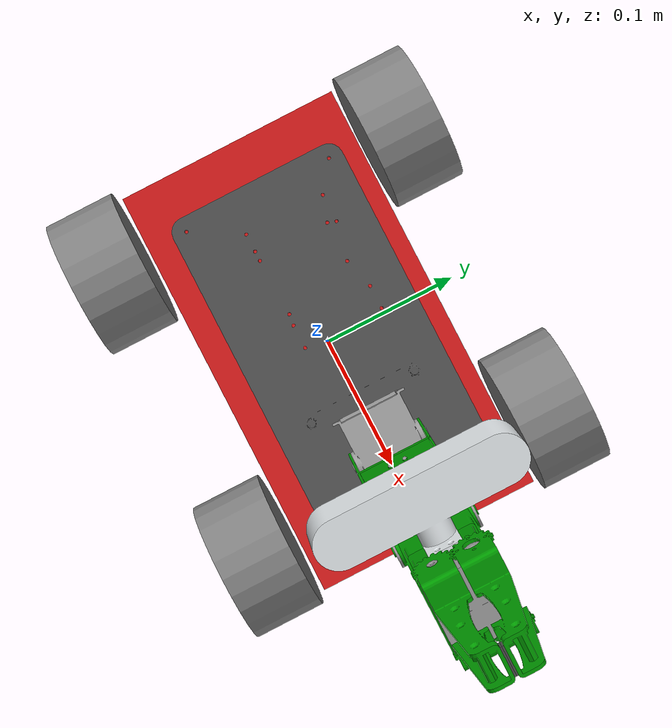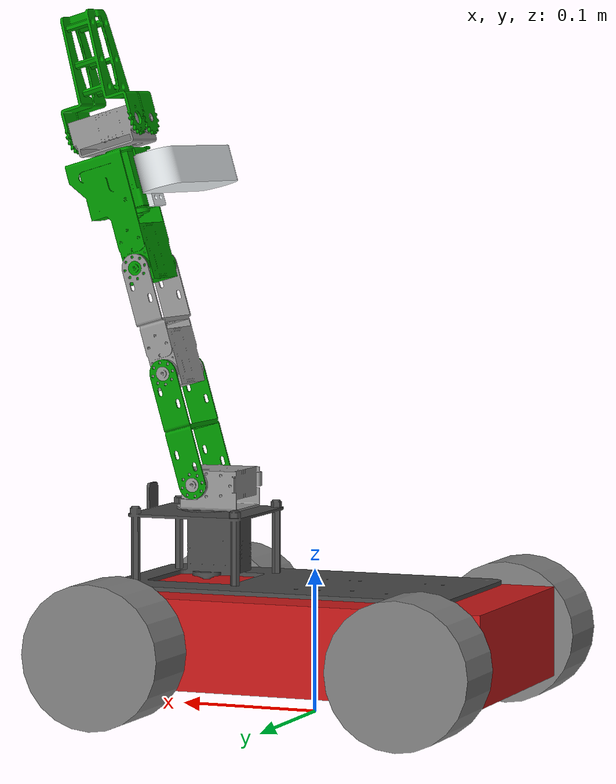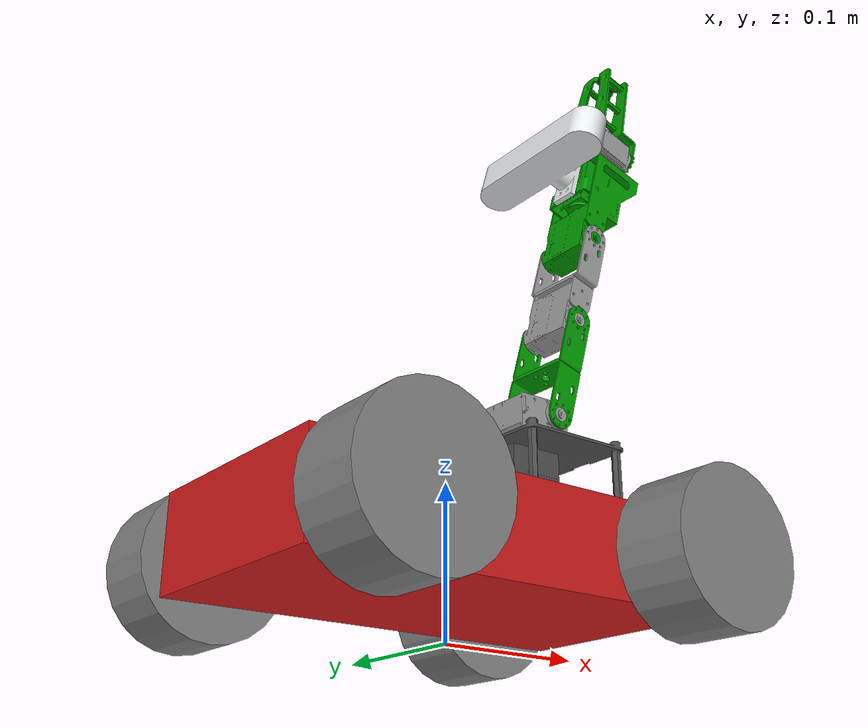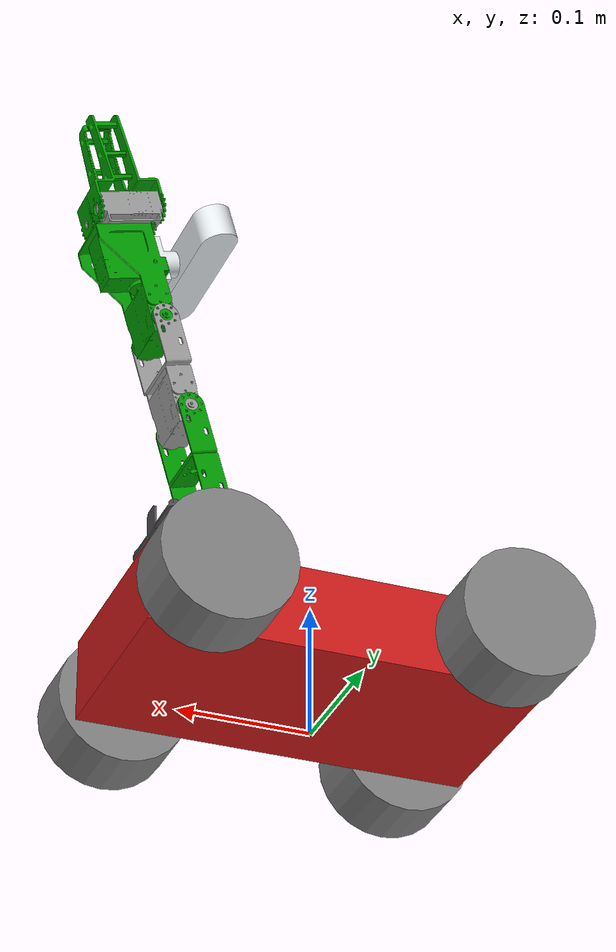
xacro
<?xml version="1.0"?>
<robot name="combined_robot" xmlns:xacro="http://www.ros.org/wiki/xacro">

  <!-- Include chassis -->
  <xacro:include filename="$(find robot_control)/combined_urdf/ackermann.urdf.xacro"/>

  <!-- Include robot arm -->
  <xacro:include filename="$(find robot_control)/combined_urdf/arm5dof.urdf"/>

  <!-- Mount arm to chassis -->
  <joint name="arm_mount_joint" type="fixed">
    <parent link="base_link"/>
    <child link="arm_base_link"/>
    <origin xyz="0.081 0.003 0.088" rpy="0 0 0"/>
  </joint>

</robot>

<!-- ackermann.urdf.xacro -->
<robot xmlns:xacro="http://ros.org/wiki/xacro" name="ackermann_chassis">

  <!-- ====== Geometry (edit as needed) ====== -->
  <xacro:property name="wheelbase"          value="0.22"/>     <!-- centre axis of front left wheel to centre axis of rear left wheel in meters (same parameter for rigth side) -->
  <xacro:property name="front_track"        value="0.2225"/> <!-- centre of front wheel to centre of right front wheel in meters -->
  <xacro:property name="rear_track"         value="0.2225"/> <!-- centre of rear wheel to centre of right rear wheel in meters -->
  <xacro:property name="front_wheel_radius" value="0.05"/>  <!-- radius of a wheel -->
  <xacro:property name="rear_wheel_radius"  value="0.05"/>  <!-- radius of a wheel -->

<!-- chassis parameters for RViz or Gazebo -->
  <xacro:property name="chassis_height"     value="0.063"/>     <!-- total height of chassis from ground to top in m -->
  <xacro:property name="clearance"          value="0.022"/>     <!-- total clearance chassis has from ground to beginning of chassis -->
  <xacro:property name="z_base"             value="0.0535"/>    <!-- clearance + chassis_height/2 -->

  <!-- Switch: fake hardware vs real Arduino bridge -->
  <xacro:arg name="use_fake_hardware" default="true"/>
  <xacro:arg name="serial_port"  default="/dev/ttyACM0"/>
  <xacro:arg name="serial_baud"  default="115200"/>

  <!-- ====== Wheel macro (visual + collision) ====== -->
  <xacro:macro name="wheel_link" params="name r">
  <link name="${name}">
    <inertial>
      <origin xyz="0 0 0"/>
      <mass value="0.5"/>
      <inertia ixx="0.001" iyy="0.001" izz="0.001" ixy="0" ixz="0" iyz="0"/>
    </inertial>

    <!-- Rotate cylinder so its axis (Z) becomes Y: roll = +90° -->
    <visual>
      <origin xyz="0 0 0" rpy="1.5708 0 0"/>  <!-- << correct -->
      <geometry><cylinder radius="${r}" length="0.05"/></geometry>
      <material name="grey"><color rgba="0.5 0.5 0.5 1.0"/></material>
    </visual>

    <collision>
      <origin xyz="0 0 0" rpy="1.5708 0 0"/>  <!-- << same -->
      <geometry><cylinder radius="${r}" length="0.05"/></geometry>
    </collision>
  </link>
</xacro:macro>

  <!-- ====== Base (chassis) ====== -->
  <link name="base_link">
    <inertial>
      <origin xyz="0 0 ${z_base}"/>
      <mass value="8.0"/>
      <inertia ixx="0.1" iyy="0.1" izz="0.1" ixy="0" ixz="0" iyz="0"/>
    </inertial>
    <visual>
      <origin xyz="0 0 ${z_base}"/>
      <geometry><box size="0.297 0.159 0.063"/></geometry>
      <material name="red"><color rgba="0.8 0.1 0.1 1.0"/></material>
    </visual>
    <collision>
      <origin xyz="0 0 ${z_base}" rpy="0 0 0"/>
      <geometry><box size="0.297 0.159 0.063"/></geometry>
    </collision>
  </link>

  <!-- ====== Wheel links ====== -->
  <xacro:wheel_link name="front_left_wheel"  r="${front_wheel_radius}"/>
  <xacro:wheel_link name="front_right_wheel" r="${front_wheel_radius}"/>
  <xacro:wheel_link name="rear_left_wheel"   r="${rear_wheel_radius}"/>
  <xacro:wheel_link name="rear_right_wheel"  r="${rear_wheel_radius}"/>

  <!-- ====== Realsense Camera link ====== -->

  <!-- Optional optical frames (recommended) -->

  <!-- ====== Joints (x forward, y left, z up) ====== -->
  <!-- Both joints are still shown in RViz to accurately represent the chassis, however, one is a mimic to depict the tricycle setup -->
  <!-- Front steering (revolute about Z at wheel height) -->
  <joint name="front_left_steer_joint" type="revolute">
    <parent link="base_link"/>
    <child  link="front_left_wheel"/>
    <origin xyz="${wheelbase/2}  ${front_track/2}  ${front_wheel_radius}" rpy="0 0 0"/>
    <axis xyz="0 0 1"/>
    <!-- safe ±48° from HTS-20H (300–700 units) -->
    <limit lower="-0.838" upper="0.838" effort="5" velocity="1.5"/>
  </joint>

  <joint name="front_right_steer_joint" type="revolute">
    <mimic joint="front_left_steer_joint" multiplier="1.0" offset="0.0"/> <!-- This is added so the chassis acts as a single steering actuator with a mirrored visual steering -->
    <parent link="base_link"/>
    <child  link="front_right_wheel"/>
    <origin xyz="${wheelbase/2} -${front_track/2}  ${front_wheel_radius}" rpy="0 0 0"/>
    <axis xyz="0 0 1"/>
    <limit lower="-0.838" upper="0.838" effort="5" velocity="1.5"/>
  </joint>

  <!-- Rear drive (continuous spin about Y at wheel height) -->
  <joint name="rear_left_wheel_joint" type="continuous">
    <parent link="base_link"/>
    <child  link="rear_left_wheel"/>
    <origin xyz="-${wheelbase/2}  ${rear_track/2}  ${rear_wheel_radius}" rpy="0 0 0"/>
    <axis xyz="0 1 0"/>
    <limit effort="10" velocity="50"/>
  </joint>

  <joint name="rear_right_wheel_joint" type="continuous">
    <parent link="base_link"/>
    <child  link="rear_right_wheel"/>
    <origin xyz="-${wheelbase/2} -${rear_track/2}  ${rear_wheel_radius}" rpy="0 0 0"/>
    <axis xyz="0 1 0"/>
    <limit effort="10" velocity="50"/>
  </joint>

  <!-- ====== Realsense Camera Joint ====== -->

  <!-- ====== Frame hierarchy ====== -->

  <!-- Optical frames (ROS standard orientation) -->

  <!-- ====== ros2_control unified system (fake vs real) ====== -->
  <ros2_control name="ackermann_serial" type="system">
    <hardware>
      <xacro:if value="$(arg use_fake_hardware)">
        <!-- Fake hardware for RViz/sim bring-up -->
        <plugin>fake_components/GenericSystem</plugin>
        <param name="mock_sensor_commands">true</param>
      </xacro:if>
      <xacro:unless value="$(arg use_fake_hardware)">
        <!-- Real hardware (Arduino bridge plugin) -->
        <plugin>ackermann_chassis/ArduinoSerialHardware</plugin>
        <param name="port">$(arg serial_port)</param>
        <param name="baud">$(arg serial_baud)</param>
        <param name="wheel_radius">${rear_wheel_radius}</param>
        <param name="max_mps">1.5</param>
        <param name="steer_limit_rad">0.837758</param>
      </xacro:unless>
    </hardware>

    <!-- Steering interfaces (position) -->
    <joint name="front_left_steer_joint">
      <command_interface name="position"/>
      <state_interface   name="position"/>
    </joint>
    <joint name="front_right_steer_joint"> <!-- No command interface to represent single steering actuator correctly -->
      <state_interface   name="position"/>
    </joint>

    <!-- Rear drive interfaces (velocity states only, to match plugin) -->
    <joint name="rear_left_wheel_joint">
      <command_interface name="velocity"/>
      <state_interface   name="position"/>
      <state_interface   name="velocity"/>
    </joint>
    <joint name="rear_right_wheel_joint">
      <command_interface name="velocity"/>
      <state_interface   name="position"/>
      <state_interface   name="velocity"/>
    </joint>
  </ros2_control>

</robot>

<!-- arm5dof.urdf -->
<robot
  name="arm5dof">
  <link
    name="arm_base_link">
    <inertial>
      <origin
        xyz="-0.05549 -1.2443E-05 0.014047"
        rpy="0 0 0" />
      <mass
        value="0.34831" />
      <inertia
        ixx="0.00037734"
        ixy="-1.9667E-07"
        ixz="-5.7059E-07"
        iyy="0.0011827"
        iyz="9.3336E-14"
        izz="0.0015361" />
    </inertial>
    <visual>
      <origin
        xyz="0 0 0"
        rpy="0 0 0" />
      <geometry>
        <mesh
          filename="package://robot_control/meshes/base_link.STL" />
      </geometry>
      <material
        name="black">
        <color
          rgba="0.3 0.3 0.3 1" />
      </material>
    </visual>
    <collision>
      <origin
        xyz="0 0 0"
        rpy="0 0 0" />
      <geometry>
        <mesh
          filename="package://robot_control/meshes/base_link.STL" />
      </geometry>
    </collision>
  </link>
  <link
    name="link1">
    <inertial>
      <origin
        xyz="-0.0098047 1.4097E-06 0.014583"
        rpy="0 0 0" />
      <mass
        value="0.047857" />
      <inertia
        ixx="9.9743E-06"
        ixy="1.2606E-09"
        ixz="5.9862E-07"
        iyy="8.9062E-06"
        iyz="2.193E-09"
        izz="1.4861E-05" />
    </inertial>
    <visual>
      <origin
        xyz="0 0 0"
        rpy="0 0 0" />
      <geometry>
        <mesh
          filename="package://robot_control/meshes/link1.STL" />
      </geometry>
      <material
        name="green">
        <color
          rgba="0.6 0.6 0.6 1" />
      </material>
    </visual>
    <collision>
      <origin
        xyz="0 0 0"
        rpy="0 0 0" />
      <geometry>
        <mesh
          filename="package://robot_control/meshes/link1.STL" />
      </geometry>
    </collision>
  </link>
  <joint
    name="joint_0"
    type="revolute">
    <origin
      xyz="0 0 0.052"
      rpy="0 0 0" />
    <parent
      link="arm_base_link" />
    <child
      link="link1" />
    <axis
      xyz="0 0 1" />
    <limit
      lower="-1.5708"
      upper="1.5708"
      effort="20"
      velocity="3.5" />
  </joint>
    <link
    name="link2">
    <inertial>
      <origin
        xyz="0.04 -5.5511E-17 6.7485E-17"
        rpy="0 0 0" />
      <mass
        value="0.020202" />
      <inertia
        ixx="9.9386E-06"
        ixy="1.7219E-08"
        ixz="-5.3147E-21"
        iyy="1.3724E-05"
        iyz="-1.594E-21"
        izz="5.1826E-06" />
    </inertial>
    <visual>
      <origin
        xyz="0 0 0"
        rpy="0 0 0" />
      <geometry>
        <mesh
          filename="package://robot_control/meshes/link2.STL" />
      </geometry>
      <material
        name="green">
        <color
          rgba="0 0.6 0 1" />
      </material>
    </visual>
    <collision>
      <origin
        xyz="0 0 0"
        rpy="0 0 0" />
      <geometry>
        <mesh
          filename="package://robot_control/meshes/link2.STL" />
      </geometry>
    </collision>
  </link>
  <joint
    name="joint_1"
    type="revolute">
    <origin
      xyz="0 0 0.018"
      rpy="-1.5708 0 0" />
    <parent
      link="link1" />
    <child
      link="link2" />
    <axis
      xyz="0 0 1"
      rpy = "0 0 0" />
    <limit
      lower="-2.3562"
      upper="-0.2269"
      effort="20"
      velocity="3.5" />
  </joint>

  <link
    name="link3">
    <inertial>
      <origin
        xyz="0.019908 0 -6.1294E-06"
        rpy="0 0 0" />
      <mass
        value="0.050927" />
      <inertia
        ixx="1.2573E-05"
        ixy="8.6095E-09"
        ixz="-1.9789E-09"
        iyy="1.7838E-05"
        iyz="3.1614E-20"
        izz="8.6328E-06" />
    </inertial>
    <visual>
      <origin
        xyz="0 0 0"
        rpy="0 0 0" />
      <geometry>
        <mesh
          filename="package://robot_control/meshes/link3.STL" />
      </geometry>
      <material
        name="gray">
        <color
          rgba="0.6 0.6 0.6 1" />
      </material>
    </visual>
    <collision>
      <origin
        xyz="0 0 0"
        rpy="0 0 0" />
      <geometry>
        <mesh
          filename="package://robot_control/meshes/link3.STL" />
      </geometry>
    </collision>
  </link>
  <joint
    name="joint_2"
    type="revolute">
    <origin
      xyz="0.08 0 0"
      rpy="0 0 0" />
    <parent
      link="link2" />
    <child
      link="link3" />
    <axis
      xyz="0 0 1" />
    <limit
      lower="-0.7854"
      upper="1.5708"
      effort="20"
      velocity="3.5" />
  </joint>
  <link
    name="link4">
    <inertial>
      <origin
        xyz="0.042216 0.0041806 -3.2915E-06"
        rpy="0 0 0" />
      <mass
        value="0.094835" />
      <inertia
        ixx="2.4341E-05"
        ixy="-2.5244E-06"
        ixz="-1.9789E-09"
        iyy="3.3312E-05"
        iyz="1.4436E-20"
        izz="3.0737E-05" />
    </inertial>
    <visual>
      <origin
        xyz="0 0 0"
        rpy="0 0 0" />
      <geometry>
        <mesh
          filename="package://robot_control/meshes/link4.STL" />
      </geometry>
      <material
        name="green">
        <color
          rgba="0 0.6 0 1" />
      </material>
    </visual>
    <collision>
      <origin
        xyz="0 0 0"
        rpy="0 0 0" />
      <geometry>
        <mesh
          filename="package://robot_control/meshes/link4.STL" />
      </geometry>
    </collision>
  </link>
  <joint
    name="joint_3"
    type="revolute">
    <origin
      xyz="0.07615 0 0"
      rpy="0 0 0" />
    <parent
      link="link3" />
    <child
      link="link4" />
    <axis
      xyz="0 0 1"
      rpy = "0 0 0" />
    <limit
      lower="-1.5708"
      upper="2.26893"
      effort="20"
      velocity="3.5" />
  </joint>
  <link
    name="link5">
    <inertial>
      <origin
        xyz="-8.2184E-06 -0.0011968 0.01386"
        rpy="0 0 0" />
      <mass
        value="0.049124" />
      <inertia
        ixx="8.2684E-06"
        ixy="2.2759E-09"
        ixz="5.1987E-11"
        iyy="1.1645E-05"
        iyz="5.9116E-07"
        izz="1.5458E-05" />
    </inertial>
    <visual>
      <origin
        xyz="0 0 0"
        rpy="0 0 0" />
      <geometry>
        <mesh
          filename="package://robot_control/meshes/link5.STL" />
      </geometry>
      <material
        name="gray">
        <color
          rgba="0.6 0.6 0.6 1" />
      </material>
    </visual>
    <collision>
      <origin
        xyz="0 0 0"
        rpy="0 0 0" />
      <geometry>
        <mesh
          filename="package://robot_control/meshes/link5.STL" />
      </geometry>
    </collision>
  </link>
<joint
    name="joint_4"
    type="revolute">
    <origin
      xyz="0.0854 0 0"
      rpy="-1.57079632679489 8.79419361882729E-05 -1.5707963267949" />
    <parent
      link="link4" />
    <child
      link="link5" />
    <axis
      xyz="0 0 1" />
    <limit
      lower="-1.5708"
      upper="1.5708"
      effort="20"
      velocity="3.5" />
  </joint>
  <link
    name="left_gripper_link">
    <inertial>
      <origin
        xyz="0.035118 0.00016366 5.5511E-17"
        rpy="0 0 0" />
      <mass
        value="0.024589" />
      <inertia
        ixx="1.611E-06"
        ixy="2.5381E-07"
        ixz="1.1103E-20"
        iyy="1.2951E-05"
        iyz="-2.2806E-22"
        izz="1.2364E-05" />
    </inertial>
    <visual>
      <origin
        xyz="0 0 0"
        rpy="0 0 0" />
      <geometry>
        <mesh
          filename="package://robot_control/meshes/left_gripper_link.STL" />
      </geometry>
      <material
        name="green">
        <color
          rgba="0 0.6 0 1" />
      </material>
    </visual>
    <collision>
      <origin
        xyz="0 0 0"
        rpy="0 0 0" />
      <geometry>
        <mesh
          filename="package://robot_control/meshes/left_gripper_link.STL" />
      </geometry>
    </collision>
  </link>
  <joint
    name="left_gripper_joint"
    type="revolute">
    <origin
      xyz="0 0.00965 0.016"
      rpy="8.7942E-05 -1.5708 0" />
    <parent
      link="link5" />
    <child
      link="left_gripper_link" />
    <axis
      xyz="0 0 1" />
    <limit
      lower="0"
      upper="1.5708"
      effort="20"
      velocity="3.5" />
  </joint>
  <link
    name="left_rubber_pad_link">
    <inertial>
      <origin
        xyz="-5.5511E-17 0.0005 0"
        rpy="0 0 0" />
      <mass
        value="8.5E-05" />
      <inertia
        ixx="2.0542E-09"
        ixy="-5.8301E-25"
        ixz="-4.0091E-24"
        iyy="2.2242E-09"
        iyz="2.0909E-27"
        izz="1.8417E-10" />
    </inertial>
    <visual>
      <origin
        xyz="0 0 0"
        rpy="0 0 0" />
      <geometry>
        <mesh
          filename="package://robot_control/meshes/left_rubber_pad_link.STL" />
      </geometry>
      <material
        name="rubber">
        <color
          rgba="0.29804 0.29804 0.29804 1" />
      </material>
    </visual>
    <collision>
      <origin
        xyz="0 0 0"
        rpy="0 0 0" />
      <geometry>
        <mesh
          filename="package://robot_control/meshes/left_rubber_pad_link.STL" />
      </geometry>
    </collision>
  </link>
  <joint
    name="left_rubber_pad_joint"
    type="fixed">
    <origin
      xyz="0.0810000000000007 -0.0109999999999981 0"
      rpy="0 0 0" />
    <parent
      link="left_gripper_link" />
    <child
      link="left_rubber_pad_link" />
    <axis
      xyz="0 0 0" />
  </joint>
  <link
    name="right_gripper_link">
    <inertial>
      <origin
        xyz="0.036355 -0.00017366 -4.996E-16"
        rpy="0 0 0" />
      <mass
        value="0.023734" />
      <inertia
        ixx="1.5331E-06"
        ixy="-2.5364E-07"
        ixz="-1.9986E-21"
        iyy="1.2074E-05"
        iyz="7.3824E-23"
        izz="1.1549E-05" />
    </inertial>
    <visual>
      <origin
        xyz="0 0 0"
        rpy="0 0 0" />
      <geometry>
        <mesh
          filename="package://robot_control/meshes/right_gripper_link.STL" />
      </geometry>
      <material
        name="green">
        <color
          rgba="0 0.6 0 1" />
      </material>
    </visual>
    <collision>
      <origin
        xyz="0 0 0"
        rpy="0 0 0" />
      <geometry>
        <mesh
          filename="package://robot_control/meshes/right_gripper_link.STL" />
      </geometry>
    </collision>
  </link>
  <joint
    name="right_gripper_joint"
    type="revolute">
    <origin
      xyz="0 -0.0123499997975674 0.016"
      rpy="8.79419382699738E-05 -1.5707963267949 0" />
    <parent
      link="link5" />
    <child
      link="right_gripper_link" />
    <axis
      xyz="0 0 1" />
    <limit
      lower="-1.5708"
      upper="0"
      effort="20"
      velocity="3.5" />
    <mimic
      joint="left_gripper_joint"
      multiplier="-1"
      offset="0" />
  </joint>
  <link
    name="right_rubber_pad_link">
    <inertial>
      <origin
        xyz="3.3307E-16 -0.0005 -2.6507E-15"
        rpy="0 0 0" />
      <mass
        value="8.5E-05" />
      <inertia
        ixx="2.0542E-09"
        ixy="-8.9622E-25"
        ixz="1.5346E-24"
        iyy="2.2242E-09"
        iyz="3.0737E-27"
        izz="1.8417E-10" />
    </inertial>
    <visual>
      <origin
        xyz="0 0 0"
        rpy="0 0 0" />
      <geometry>
        <mesh
          filename="package://robot_control/meshes/right_rubber_pad_link.STL" />
      </geometry>
      <material
        name="rubber">
        <color
          rgba="0.29804 0.29804 0.29804 1" />
      </material>
    </visual>
    <collision>
      <origin
        xyz="0 0 0"
        rpy="0 0 0" />
      <geometry>
        <mesh
          filename="package://robot_control/meshes/right_rubber_pad_link.STL" />
      </geometry>
    </collision>
  </link>
  <joint
    name="right_rubber_pad_joint"
    type="fixed">
    <origin
      xyz="0.081 0.011 0"
      rpy="0 0 0" />
    <parent
      link="right_gripper_link" />
    <child
      link="right_rubber_pad_link" />
    <axis
      xyz="0 0 0" />
  </joint>
  <link
    name="camera_link">
    <inertial>
      <origin
        xyz="0 0 0"
        rpy="0 0 0" />
      <mass
        value="0.182214459073633" />
      <inertia
        ixx="3.36907557025265E-05"
        ixy="5.37491052812001E-09"
        ixz="-2.59991125882536E-08"
        iyy="0.000396547856460873"
        iyz="-6.17675676299939E-08"
        izz="0.000390144942272885" />
    </inertial>
    <visual>
      <origin
        xyz="0 0 0"
        rpy="0 0 0" />
      <geometry>
        <mesh
          filename="package://robot_control/meshes/camera_mount_mesh.stl"
          scale="0.001 0.001 0.001" />
      </geometry>
      <material
        name="">
        <color
          rgba="0.898039215686275 0.917647058823529 0.929411764705882 1" />
      </material>
    </visual>
    <collision>
      <origin
        xyz="0 0 0"
        rpy="0 0 0" />
      <geometry>
        <mesh
          filename="package://robot_control/meshes/camera_mount_mesh.stl"
          scale="0.001 0.001 0.001" />
      </geometry>
    </collision>
  </link>
  <joint
    name="camera_joint"
    type="fixed">
    <origin
      xyz="0.0584 -0.0455 0.0001"
      rpy="1.570796 0 0" />
    <parent
      link="link4" />
    <child
      link="camera_link" />
    <axis
      xyz="0 0 0" />
  </joint>
  <link
    name="ee_link">
  </link>
  <joint
    name="ee_joint"
    type="fixed">
    <parent link= "link5"/>
    <child link= "ee_link"/>
    <origin xyz= "0.000 0 0.07" rpy="0 0 0"/>
  </joint>
</robot>
